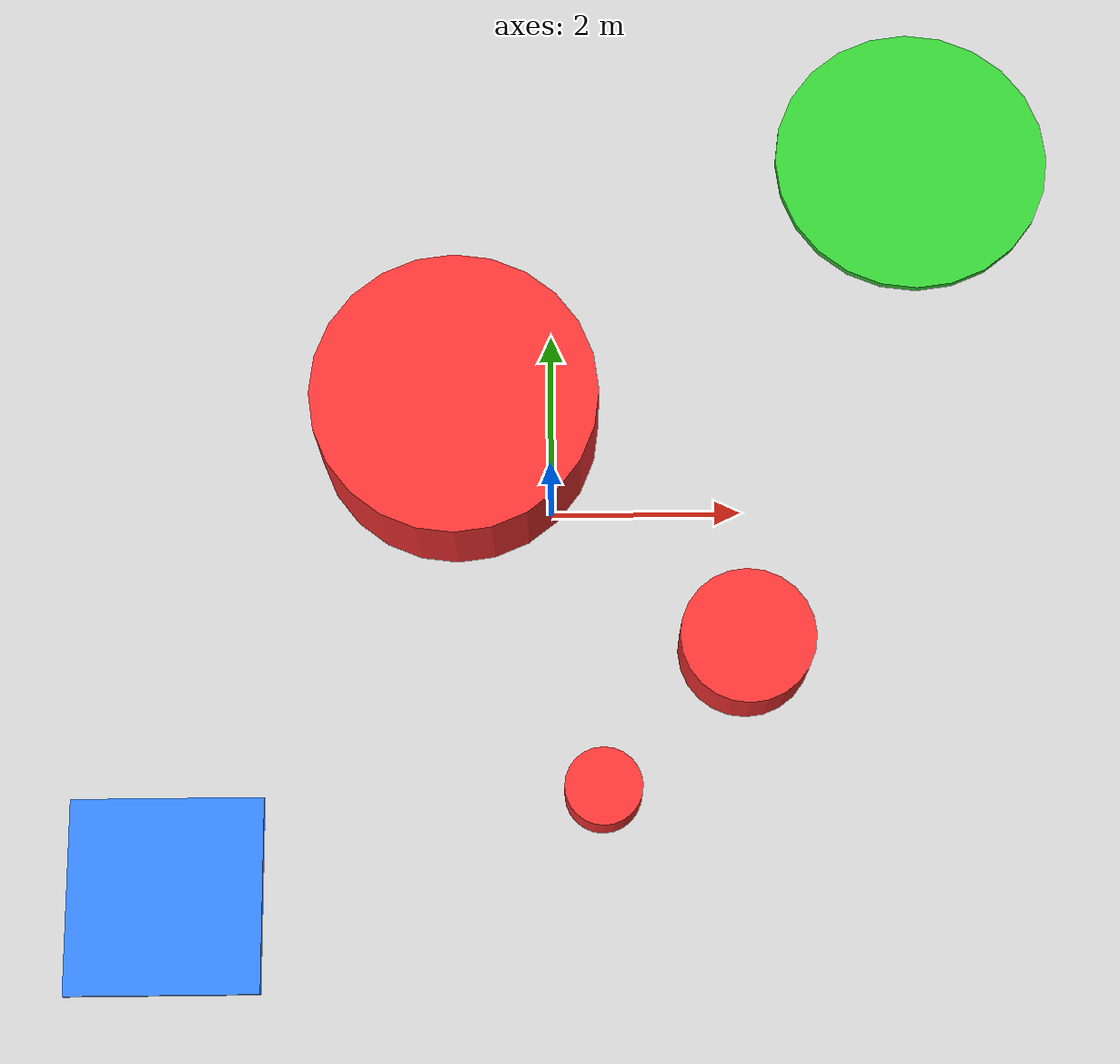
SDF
<?xml version="1.0"?>
<sdf version="1.6">
  <world name="world1_simple">

    <!-- Physics -->
    <physics name="default_physics" default="0" type="ode">
      <gravity>0 0 -9.8066</gravity>
      <ode>
        <solver>
          <type>quick</type>
          <iters>10</iters>
          <sor>1.3</sor>
        </solver>
      </ode>
      <real_time_factor>1</real_time_factor>
      <real_time_update_rate>1000</real_time_update_rate>
    </physics>

    <!-- Ground Plane -->
    <include>
      <uri>model://ground_plane</uri>
    </include>

    <!-- Lighting -->
    <include>
      <uri>model://sun</uri>
    </include>

    <!-- Start Area (Blue Platform) -->
    <model name="start_area">
      <pose>-4 -4 0.05 0 0 0</pose>
      <static>true</static>
      <link name="link">
        <visual name="visual">
          <geometry>
            <box>
              <size>2 2 0.1</size>
            </box>
          </geometry>
          <material>
            <ambient>0.2 0.5 1.0 1</ambient>
            <diffuse>0.2 0.5 1.0 1</diffuse>
          </material>
        </visual>
        <collision name="collision">
          <geometry>
            <box>
              <size>2 2 0.1</size>
            </box>
          </geometry>
        </collision>
      </link>
    </model>

    <!-- Target Area (Green Platform) -->
    <model name="target_area">
      <pose>4 4 0.05 0 0 0</pose>
      <static>true</static>
      <link name="link">
        <visual name="visual">
          <geometry>
            <cylinder>
              <radius>1.5</radius>
              <length>0.1</length>
            </cylinder>
          </geometry>
          <material>
            <ambient>0.2 0.8 0.2 1</ambient>
            <diffuse>0.2 0.8 0.2 1</diffuse>
          </material>
        </visual>
        <collision name="collision">
          <geometry>
            <cylinder>
              <radius>1.5</radius>
              <length>0.1</length>
            </cylinder>
          </geometry>
        </collision>
      </link>
    </model>

    <!-- Obstacle 1 - Large Circle -->
    <model name="obstacle1">
      <pose>-1 1 0.5 0 0 0</pose>
      <static>true</static>
      <link name="link">
        <visual name="visual">
          <geometry>
            <cylinder>
              <radius>1.5</radius>
              <length>1.5</length>
            </cylinder>
          </geometry>
          <material>
            <ambient>1.0 0.2 0.2 1</ambient>
            <diffuse>1.0 0.2 0.2 1</diffuse>
          </material>
        </visual>
        <collision name="collision">
          <geometry>
            <cylinder>
              <radius>1.5</radius>
              <length>1.5</length>
            </cylinder>
          </geometry>
        </collision>
      </link>
    </model>

    <!-- Obstacle 2 - Medium Circle -->
    <model name="obstacle2">
      <pose>2 -1.5 0.4 0 0 0</pose>
      <static>true</static>
      <link name="link">
        <visual name="visual">
          <geometry>
            <cylinder>
              <radius>0.7</radius>
              <length>0.8</length>
            </cylinder>
          </geometry>
          <material>
            <ambient>1.0 0.2 0.2 1</ambient>
            <diffuse>1.0 0.2 0.2 1</diffuse>
          </material>
        </visual>
        <collision name="collision">
          <geometry>
            <cylinder>
              <radius>0.7</radius>
              <length>0.8</length>
            </cylinder>
          </geometry>
        </collision>
      </link>
    </model>

    <!-- Obstacle 3 - Small Circle -->
    <model name="obstacle3">
      <pose>0.5 -3 0.3 0 0 0</pose>
      <static>true</static>
      <link name="link">
        <visual name="visual">
          <geometry>
            <cylinder>
              <radius>0.4</radius>
              <length>0.6</length>
            </cylinder>
          </geometry>
          <material>
            <ambient>1.0 0.2 0.2 1</ambient>
            <diffuse>1.0 0.2 0.2 1</diffuse>
          </material>
        </visual>
        <collision name="collision">
          <geometry>
            <cylinder>
              <radius>0.4</radius>
              <length>0.6</length>
            </cylinder>
          </geometry>
        </collision>
      </link>
    </model>

  </world>
</sdf>
